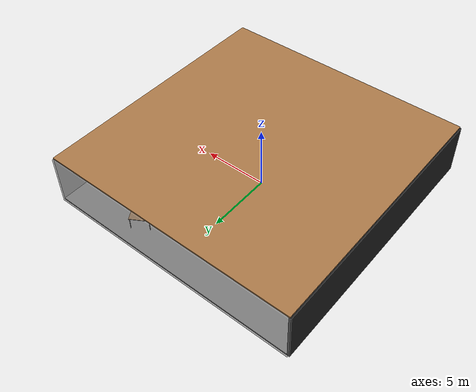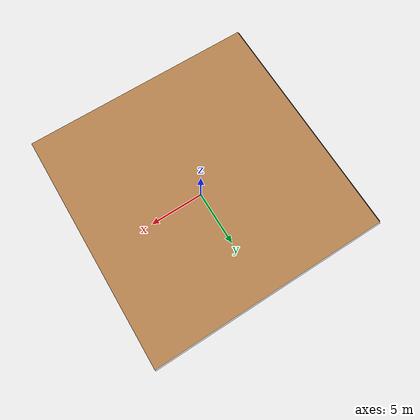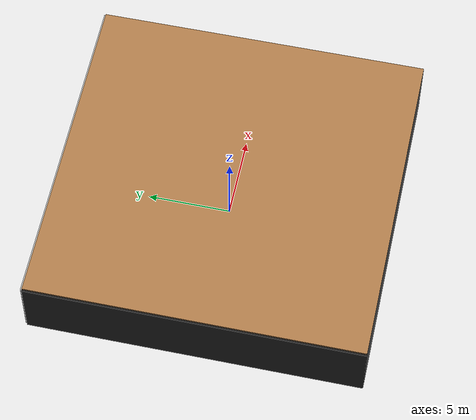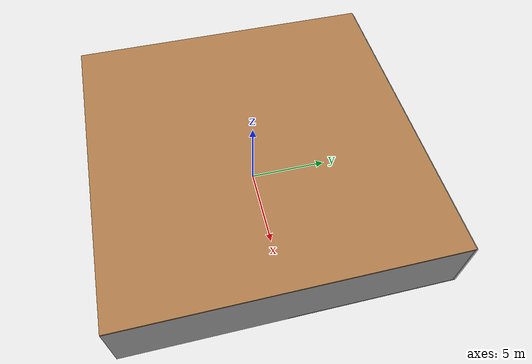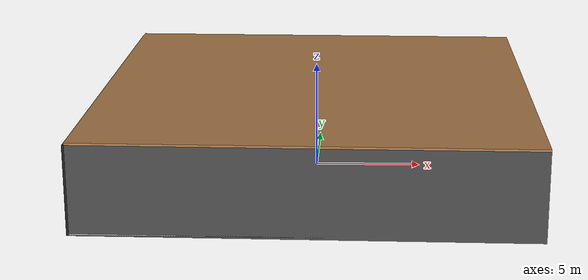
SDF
<sdf version="1.4">
 <world name="default">
  <physics type="ode">
   <max_step_size>0.001</max_step_size>
   <real_time_factor>1</real_time_factor>
   <real_time_update_rate>1000</real_time_update_rate>
   <gravity>0 0 -9.8</gravity>
  </physics>
  <scene><ambient>0.4 0.4 0.4 1</ambient><background>0.7 0.7 0.7 1</background><shadows>1</shadows></scene>
  <model name="Surrounding">
   <static>1</static>
   <link name="Ceiling">
    <collision name="Ceiling_Collision"><geometry><box><size>20 20 0.1</size></box></geometry></collision>
    <visual name="Ceiling_Visual">
     <geometry><box><size>20 20 0.1</size></box></geometry>
     <material>
      <script><uri>file://media/materials/scripts/gazebo.material</uri><name>Gazebo/Wood</name></script>
     </material>
    </visual>
    <pose>0 0 4.05 0 0 0</pose>
   </link>
   <link name="Wall_South">
    <collision name="Wall_South_Collision">
     <geometry><box><size>20 0 4</size></box></geometry>
     <pose>0 0 2 0 -0 0</pose>
    </collision>
    <visual name="Wall_South_Visual">
     <pose>0 0 2 0 -0 0</pose>
     <geometry><box><size>20 0 4</size></box></geometry>
     <material>
      <script><uri>file://media/materials/scripts/gazebo.material</uri><name>Gazebo/Road</name></script>
     </material>
    </visual>
    <velocity_decay><linear>0</linear><angular>0</angular></velocity_decay>
    <pose>0 -10 0 0 -0 0</pose>
   </link>
   <link name="Wall_East">
    <collision name="Wall_21_Collision">
     <geometry><box><size>20 0 4</size></box></geometry>
     <pose>0 0 2 0 -0 0</pose>
    </collision>
    <visual name="Wall_21_Visual">
     <pose>0 0 2 0 -0 0</pose>
     <geometry><box><size>20 0 4</size></box></geometry>
     <material>
      <script><uri>file://media/materials/scripts/gazebo.material</uri><name>Gazebo/LightOff</name></script>
     </material>
    </visual>
    <velocity_decay><linear>0</linear><angular>0</angular></velocity_decay>
    <pose>10 0 0 0 -0 1.5708</pose>
   </link>
   <link name="Wall_North">
    <collision name="Wall_22_Collision">
     <geometry><box><size>20 0.2 4</size></box></geometry>
     <pose>0 0 2 0 -0 0</pose>
    </collision>
    <visual name="Wall_22_Visual">
     <pose>0 0 2 0 -0 0</pose>
     <geometry><box><size>20 0.2 4</size></box></geometry>
     <material>
      <script><uri>file://media/materials/scripts/gazebo.material</uri><name>Gazebo/GreyTransparent</name></script>
     </material>
    </visual>
    <velocity_decay><linear>0</linear><angular>0</angular></velocity_decay>
    <pose>0 10 0 0 -0 0</pose>
   </link>
   <link name="Wall_West">
    <collision name="Wall_23_Collision">
     <geometry><box><size>20 0.2 4</size></box></geometry>
     <pose>0 0 2 0 -0 0</pose>
    </collision>
    <visual name="Wall_23_Visual">
     <pose>0 0 2 0 -0 0</pose>
     <geometry><box><size>20 0.2 4</size></box></geometry>
     <material>
      <script><uri>file://media/materials/scripts/gazebo.material</uri><name>Gazebo/FlatBlack</name></script>
     </material>
    </visual>
    <velocity_decay><linear>0</linear><angular>0</angular></velocity_decay>
    <pose>-10 0 0 0 0 -1.5708</pose>
   </link>
   <link name="Ground_link">
    <collision name="collision">
     <pose>0 0 .05 0 -0 0</pose>
     <geometry><box><size>20 20 0.1</size></box></geometry>
    </collision>
    <visual name="visual">
     <pose>0 0 .05 0 -0 0</pose>
     <geometry><box><size>20 20 0.1</size></box></geometry>
     <material>
      <script><uri>file://media/materials/scripts/gazebo.material</uri><name>Gazebo/GreyGradientSky</name></script>
     </material>
    </visual>
   </link>
   <static>1</static>
  </model>
  <spherical_coordinates>
   <surface_model>EARTH_WGS84</surface_model>
   <latitude_deg>0</latitude_deg>
   <longitude_deg>0</longitude_deg>
   <elevation>0</elevation>
   <heading_deg>0</heading_deg>
  </spherical_coordinates>
  <light name="lightball_0" type="diffuse">
   <diffuse>0.8 0.8 0.8 1</diffuse>
   <specular>0.2 0.2 0.2 1</specular>
   <attenuation>
    <range>100</range>
    <constant>0.7</constant>
    <linear>0.01</linear>
    <quadratic>0.001</quadratic>
   </attenuation>
   <direction>-0.5 0.1 -0.9</direction>
   <pose>-5.64799801018 -6.02009728128 0.609808667441 0 0 0</pose>
  </light>
  <light name="lightball_1" type="diffuse">
   <diffuse>0.8 0.8 0.8 1</diffuse>
   <specular>0.2 0.2 0.2 1</specular>
   <attenuation>
    <range>100</range>
    <constant>0.7</constant>
    <linear>0.01</linear>
    <quadratic>0.001</quadratic>
   </attenuation>
   <direction>-0.5 0.1 -0.9</direction>
   <pose>6.67958609883 8.78007514179 2.11185556201 0 0 0</pose>
  </light>
  <light name="lightball_2" type="diffuse">
   <diffuse>0.8 0.8 0.8 1</diffuse>
   <specular>0.2 0.2 0.2 1</specular>
   <attenuation>
    <range>100</range>
    <constant>0.7</constant>
    <linear>0.01</linear>
    <quadratic>0.001</quadratic>
   </attenuation>
   <direction>-0.5 0.1 -0.9</direction>
   <pose>-5.86841668188 5.57877644972 1.58264878394 0 0 0</pose>
  </light>
  <light name="lightball_3" type="diffuse">
   <diffuse>0.8 0.8 0.8 1</diffuse>
   <specular>0.2 0.2 0.2 1</specular>
   <attenuation>
    <range>100</range>
    <constant>0.7</constant>
    <linear>0.01</linear>
    <quadratic>0.001</quadratic>
   </attenuation>
   <direction>-0.5 0.1 -0.9</direction>
   <pose>8.58370406433 3.649202907 2.1811620191 0 0 0</pose>
  </light>
  <include>
   <uri>model://construction_cone</uri>
   <pose>-7.69677447934 -4.85339120545 0 0 0 1.47121480218</pose>
  </include>
  <include><uri>model://cabinet</uri><pose>5.61171801641 4.72245578002 0 0 0 0.26733755343</pose></include>
  <include><uri>model://table</uri><pose>3.90118331685 8.29299219973 0 0 0 0.538429874516</pose></include>
  <include><uri>model://table</uri><pose>6.54416583684 -2.33043269421 0 0 0 1.09069902646</pose></include>
 </world>
</sdf>

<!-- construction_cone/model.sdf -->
<sdf version="1.5">
  <model name="Construction Cone">
    <link name="link">
      <collision name="collision">
        <geometry>
          <mesh>
            <scale>10 10 10</scale>
            <uri>file://isr-testbed/construction_cone/meshes/construction_cone.dae</uri>
          </mesh>
        </geometry>
      </collision>
      <visual name="visual">
        <geometry>
          <mesh>
            <scale>10 10 10</scale>
            <uri>file://isr-testbed/construction_cone/meshes/construction_cone.dae</uri>
          </mesh>
        </geometry>
      </visual>
    </link>
  </model>
</sdf>

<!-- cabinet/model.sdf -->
<sdf version="1.5">
  <model name="cabinet">
    <static>true</static>
    <link name="cabinet_bottom_plate">
      <inertial>
        <pose>0 0 -1 0 0 0</pose>
        <inertia>
          <ixx>2.050000</ixx>
          <ixy>0</ixy>
          <ixz>0</ixz>
          <iyy>2.050000</iyy>
          <iyz>0</iyz>
          <izz>2.050000</izz>
        </inertia>
        <mass>25.000000</mass>
      </inertial>
      <collision name="cabinet_bottom_plate_geom">
        <pose>0 0 0.010000 0 0 0</pose>
        <geometry>
          <box>
            <size>0.450000 0.450000 0.020000</size>
          </box>
        </geometry>
      </collision>
      <visual name="cabinet_bottom_plate_geom_visual">
        <pose>0 0 0.010000 0 0 0</pose>
        <geometry>
          <box>
            <size>0.450000 0.450000 0.020000</size>
          </box>
        </geometry>
        <material>
          <script>
            <uri>model://media/materials/scripts/gazebo.material</uri>
            <name>Gazebo/Wood</name>
          </script>
        </material>
      </visual>
      <collision name="cabinet_bottom_plate_geom_cabinet_back_plate">
        <pose>0.235000 0 0.510000 0 0 0</pose>
        <geometry>
          <box>
            <size>0.020000 0.450000 1.020000</size>
          </box>
        </geometry>
      </collision>
      <visual name="cabinet_bottom_plate_geom_cabinet_back_plate_visual">
        <pose>0.235000 0 0.510000 0 0 0</pose>
        <geometry>
          <box>
            <size>0.020000 0.450000 1.020000</size>
          </box>
        </geometry>
        <material>
          <script>
            <uri>model://media/materials/scripts/gazebo.material</uri>
            <name>Gazebo/Wood</name>
          </script>
        </material>
      </visual>
      <collision name="cabinet_bottom_plate_geom_cabinet_left_plate">
        <pose>0 0.235000 0.510000 0 0 0</pose>
        <geometry>
          <box>
            <size>0.450000 0.020000 1.020000</size>
          </box>
        </geometry>
      </collision>
      <visual name="cabinet_bottom_plate_geom_cabinet_left_plate_visual">
        <pose>0 0.235000 0.510000 0 0 0</pose>
        <geometry>
          <box>
            <size>0.450000 0.020000 1.020000</size>
          </box>
        </geometry>
        <material>
          <script>
            <uri>model://media/materials/scripts/gazebo.material</uri>
            <name>Gazebo/Wood</name>
          </script>
        </material>
      </visual>
      <collision name="cabinet_bottom_plate_geom_cabinet_middle_plate">
        <pose>0 0 0.510000 0 0 0</pose>
        <geometry>
          <box>
            <size>0.450000 0.450000 0.020000</size>
          </box>
        </geometry>
      </collision>
      <visual name="cabinet_bottom_plate_geom_cabinet_middle_plate_visual">
        <pose>0 0 0.510000 0 0 0</pose>
        <geometry>
          <box>
            <size>0.450000 0.450000 0.020000</size>
          </box>
        </geometry>
        <material>
          <script>
            <uri>model://media/materials/scripts/gazebo.material</uri>
            <name>Gazebo/Wood</name>
          </script>
        </material>
      </visual>
      <collision name="cabinet_bottom_plate_geom_cabinet_right_plate">
        <pose>0 -0.235000 0.510000 0 0 0</pose>
        <geometry>
          <box>
            <size>0.450000 0.020000 1.020000</size>
          </box>
        </geometry>
      </collision>
      <visual name="cabinet_bottom_plate_geom_cabinet_right_plate_visual">
        <pose>0 -0.235000 0.510000 0 0 0</pose>
        <geometry>
          <box>
            <size>0.450000 0.020000 1.020000</size>
          </box>
        </geometry>
        <material>
          <script>
            <uri>model://media/materials/scripts/gazebo.material</uri>
            <name>Gazebo/Wood</name>
          </script>
        </material>
      </visual>
      <collision name="cabinet_bottom_plate_geom_cabinet_top_plate">
        <pose>0 0 1.010000 0 0 0</pose>
        <geometry>
          <box>
            <size>0.450000 0.450000 0.020000</size>
          </box>
        </geometry>
      </collision>
      <visual name="cabinet_bottom_plate_geom_cabinet_top_plate_visual">
        <pose>0 0 1.010000 0 0 0</pose>
        <geometry>
          <box>
            <size>0.450000 0.450000 0.020000</size>
          </box>
        </geometry>
        <material>
          <script>
            <uri>model://media/materials/scripts/gazebo.material</uri>
            <name>Gazebo/Wood</name>
          </script>
        </material>
      </visual>
    </link>
  </model>
</sdf>

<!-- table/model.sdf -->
<sdf version="1.5">
  <model name="table">
    <static>true</static>
    <link name="link">
      <collision name="surface">
        <pose>0 0 1.0 0 0 0</pose>
        <geometry>
          <box>
            <size>1.5 0.8 0.03</size>
          </box>
        </geometry>
        <surface>
          <friction>
            <ode>
              <mu>0.6</mu>
              <mu2>0.6</mu2>
            </ode>
          </friction>
        </surface>
      </collision>
      <visual name="visual1">
        <pose>0 0 1.0 0 0 0</pose>
        <geometry>
          <box>
            <size>1.5 0.8 0.03</size>
          </box>
        </geometry>
        <material>
          <script>
            <uri>model://media/materials/scripts/gazebo.material</uri>
            <name>Gazebo/Wood</name>
          </script>
        </material>
      </visual>
      <collision name="front_left_leg">
        <pose>0.68 0.38 0.5 0 0 0</pose>
        <geometry>
          <cylinder>
            <radius>0.02</radius>
            <length>1.0</length>
          </cylinder>
        </geometry>
      </collision>
      <visual name="front_left_leg">
        <pose>0.68 0.38 0.5 0 0 0</pose>
        <geometry>
          <cylinder>
            <radius>0.02</radius>
            <length>1.0</length>
          </cylinder>
        </geometry>
        <material>
          <script>
            <uri>model://media/materials/scripts/gazebo.material</uri>
            <name>Gazebo/Grey</name>
          </script>
        </material>
      </visual>
      <collision name="front_right_leg">
        <pose>0.68 -0.38 0.5 0 0 0</pose>
        <geometry>
          <cylinder>
            <radius>0.02</radius>
            <length>1.0</length>
          </cylinder>
        </geometry>
      </collision>
      <visual name="front_right_leg">
        <pose>0.68 -0.38 0.5 0 0 0</pose>
        <geometry>
          <cylinder>
            <radius>0.02</radius>
            <length>1.0</length>
          </cylinder>
        </geometry>
        <material>
          <script>
            <uri>model://media/materials/scripts/gazebo.material</uri>
            <name>Gazebo/Grey</name>
          </script>
        </material>
      </visual>
      <collision name="back_right_leg">
        <pose>-0.68 -0.38 0.5 0 0 0</pose>
        <geometry>
          <cylinder>
            <radius>0.02</radius>
            <length>1.0</length>
          </cylinder>
        </geometry>
      </collision>
      <visual name="back_right_leg">
        <pose>-0.68 -0.38 0.5 0 0 0</pose>
        <geometry>
          <cylinder>
            <radius>0.02</radius>
            <length>1.0</length>
          </cylinder>
        </geometry>
        <material>
          <script>
            <uri>model://media/materials/scripts/gazebo.material</uri>
            <name>Gazebo/Grey</name>
          </script>
        </material>
      </visual>
      <collision name="back_left_leg">
        <pose>-0.68 0.38 0.5 0 0 0</pose>
        <geometry>
          <cylinder>
            <radius>0.02</radius>
            <length>1.0</length>
          </cylinder>
        </geometry>
      </collision>
      <visual name="back_left_leg">
        <pose>-0.68 0.38 0.5 0 0 0</pose>
        <geometry>
          <cylinder>
            <radius>0.02</radius>
            <length>1.0</length>
          </cylinder>
        </geometry>
        <material>
          <script>
            <uri>model://media/materials/scripts/gazebo.material</uri>
            <name>Gazebo/Grey</name>
          </script>
        </material>
      </visual>
    </link>
  </model>
</sdf>
